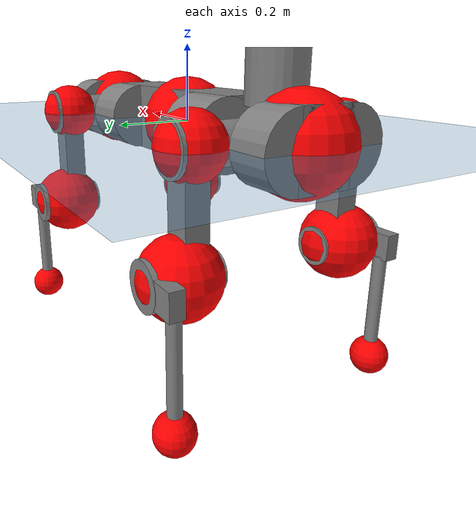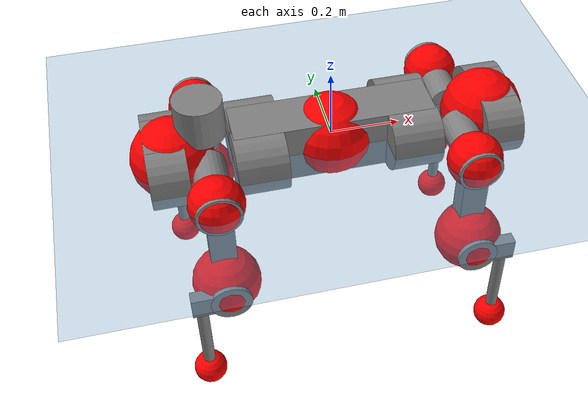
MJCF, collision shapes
<mujoco model="anymal_c">
  <compiler angle="radian" assetdir="assets" balanceinertia="true" inertiafromgeom="false"/>

  <option timestep="0.005" density="1.2" viscosity="2e-05"/>

  <size nkey="1"/>

  <visual>
    <quality shadowsize="8192"/>
    <map shadowclip="0.5"/>
  </visual>

  <default>
    <default class="/">
      <material specular="0" shininess="0.25"/>
      <geom contype="0" conaffinity="0" group="1" solref="-1000 -80"/>
      <site size="0.01 0.005 0.005" group="5"/>
      <general forcelimited="true" forcerange="-80 80" biastype="affine" gainprm="80" biasprm="0 -80 -2"/>
      <default class="anymal_c">
        <joint armature="0.01" damping="0.01" frictionloss="0.1"/>
        <default class="visual">
          <geom type="mesh" group="2"/>
          <default class="visual_zflip"/>
        </default>
        <default class="collision">
          <geom type="cylinder" group="3"/>
          <default class="foot">
            <geom size="0.03 0 0" type="sphere" condim="6" priority="1" friction="0.8 0.02 0.01" solimp="0.015 1 0.03"/>
          </default>
        </default>
      </default>
      <default class="reward_collision_sphere">
        <geom group="5" rgba="1 0 0 1"/>
      </default>
    </default>
  </default>

  <asset>
    <texture type="skybox" colorspace="auto" name="//unnamed_texture_0" builtin="gradient" rgb1="0.95 0.95 0.95" rgb2="0.95 0.95 0.95" width="100" height="600"/>
    <texture type="2d" colorspace="auto" name="texplane" builtin="checker" rgb1="0.345 0.575 0.748" rgb2="0.345 0.575 0.748" markrgb="1 1 1" width="512" height="512"/>
    <texture type="2d" colorspace="linear" name="base" file="base.png"/>
    <texture type="2d" colorspace="linear" name="top_shell" file="top_shell.png"/>
    <texture type="2d" colorspace="linear" name="bottom_shell" file="bottom_shell.png"/>
    <texture type="2d" colorspace="linear" name="remote" file="remote.png"/>
    <texture type="2d" colorspace="linear" name="hatch" file="hatch.png"/>
    <texture type="2d" colorspace="linear" name="handle" file="handle.png"/>
    <texture type="2d" colorspace="linear" name="face" file="face.png"/>
    <texture type="2d" colorspace="linear" name="battery" file="battery.png"/>
    <texture type="2d" colorspace="linear" name="lidar_cage" file="lidar_cage.png"/>
    <texture type="2d" colorspace="linear" name="depth_camera" file="depth_camera.png"/>
    <texture type="2d" colorspace="linear" name="wide_angle_camera" file="wide_angle_camera.png"/>
    <texture type="2d" colorspace="linear" name="lidar" file="lidar.png"/>
    <texture type="2d" colorspace="linear" name="drive" file="drive.png"/>
    <texture type="2d" colorspace="linear" name="hip_l" file="hip_l.png"/>
    <texture type="2d" colorspace="linear" name="shank_l" file="shank_l.png"/>
    <texture type="2d" colorspace="linear" name="foot" file="foot.png"/>
    <texture type="2d" colorspace="linear" name="thigh" file="thigh.png"/>
    <texture type="2d" colorspace="linear" name="shank_r" file="shank_r.png"/>
    <texture type="2d" colorspace="linear" name="hip_r" file="hip_r.png"/>
    <material name="MatPlane" class="/" texture="texplane" texuniform="true" texrepeat="2 2" specular="0.9" shininess="0.5"/>
    <material name="black_plastic" class="/" rgba="0.007 0.007 0.007 1"/>
    <material name="green" class="/" rgba="0.052 0.178 0.033 1"/>
    <material name="red" class="/" rgba="0.178 0.006 0.005 1"/>
    <material name="yellow" class="/" rgba="0.178 0.119 0.006 1"/>
    <material name="lwl" class="/" rgba="0.8 0.8 0.8 1"/>
    <material name="base" class="/" texture="base"/>
    <material name="top_shell" class="/" texture="top_shell"/>
    <material name="bottom_shell" class="/" texture="bottom_shell"/>
    <material name="hip_l" class="/" texture="hip_l"/>
    <material name="thigh" class="/" texture="thigh"/>
    <material name="shank_l" class="/" texture="shank_l"/>
    <material name="foot" class="/" texture="foot"/>
    <material name="hip_r" class="/" texture="hip_r"/>
    <material name="shank" class="/" texture="shank_r"/>
    <material name="hatch" class="/" texture="hatch"/>
    <material name="remote" class="/" texture="remote"/>
    <material name="handle" class="/" texture="handle"/>
    <material name="face" class="/" texture="face"/>
    <material name="depth_camera" class="/" texture="depth_camera"/>
    <material name="wide_angle_camera" class="/" texture="wide_angle_camera"/>
    <material name="battery" class="/" texture="battery"/>
    <material name="lidar_cage" class="/" texture="lidar_cage"/>
    <material name="lidar" class="/" texture="lidar"/>
    <material name="drive" class="/" texture="drive"/>
    <mesh name="base_0" class="/" file="base_0.obj"/>
    <mesh name="base_1" class="/" file="base_1.obj"/>
    <mesh name="base_2" class="/" file="base_2.obj"/>
    <mesh name="base_3" class="/" file="base_3.obj"/>
    <mesh name="base_4" class="/" file="base_4.obj"/>
    <mesh name="base_5" class="/" file="base_5.obj"/>
    <mesh name="top_shell" class="/" file="top_shell.obj"/>
    <mesh name="bottom_shell" class="/" file="bottom_shell.obj"/>
    <mesh name="remote" class="/" file="remote.obj"/>
    <mesh name="handle" class="/" file="handle.obj"/>
    <mesh name="face" class="/" file="face.obj"/>
    <mesh name="wide_angle_camera" class="/" file="wide_angle_camera.obj"/>
    <mesh name="depth_camera" class="/" file="depth_camera.obj"/>
    <mesh name="battery" class="/" file="battery.obj"/>
    <mesh name="lidar_cage" class="/" file="lidar_cage.obj"/>
    <mesh name="lidar" class="/" file="lidar.obj"/>
    <mesh name="drive" class="/" file="drive.obj"/>
    <mesh name="hip_l" class="/" file="hip_l.obj"/>
    <mesh name="thigh" class="/" file="thigh.obj"/>
    <mesh name="shank_l" class="/" file="shank_l.obj"/>
    <mesh name="foot" class="/" file="foot.obj"/>
    <mesh name="hip_r" class="/" file="hip_r.obj"/>
    <mesh name="hatch" class="/" file="hatch.obj"/>
    <mesh name="shank_r" class="/" file="shank_r.obj"/>
  </asset>

  <worldbody>
    <geom name="floor" class="/" size="100 100 0.125" type="plane" group="0" material="MatPlane"/>
    <light name="toplight_shadow" class="/" pos="0 0 5" dir="0.0990148 0.0990148 -0.990148" type="directional" ambient="0.04 0.04 0.04" diffuse="0.55 0.55 0.55" specular="0.12 0.12 0.12"/>
    <light name="toplight_fill" class="/" pos="0 0 5" dir="0.0990148 0.0990148 -0.990148" type="directional" castshadow="false" ambient="0.04 0.04 0.04" diffuse="0.3 0.3 0.3" specular="0.08 0.08 0.08"/>
    <body name="trunk" childclass="anymal_c" pos="-0.00027529 -0.000102634 -0.000286196" quat="1 -7.96893e-05 -0.000352704 -8.55734e-05">
      <inertial pos="0.000983634 -0.000295132 0.0490784" quat="0.501917 0.499735 0.49959 0.498752" mass="18.1999" diaginertia="0.643374 0.514621 0.197272"/>
      <joint name="//unnamed_joint_0" type="free" armature="0" damping="0" frictionloss="0"/>
      <geom name="//unnamed_geom_1" class="visual" material="green" mesh="base_0"/>
      <geom name="//unnamed_geom_2" class="visual" material="yellow" mesh="base_1"/>
      <geom name="//unnamed_geom_3" class="visual" material="red" mesh="base_2"/>
      <geom name="//unnamed_geom_4" class="visual" material="black_plastic" mesh="base_3"/>
      <geom name="//unnamed_geom_5" class="visual" material="lwl" mesh="base_4"/>
      <geom name="//unnamed_geom_6" class="visual" material="base" mesh="base_5"/>
      <geom name="trunk_1" class="collision" size="0.284781 0.0687403 0.0883804" type="box"/>
      <geom name="trunk_2" class="collision" size="0.0883804 0.0711953" pos="0.218007 0.0674281 0" quat="0.707107 0 0.707107 0"/>
      <geom name="trunk_3" class="collision" size="0.0883804 0.0711953" pos="-0.218007 0.0674281 0" quat="0.707107 0 0.707107 0"/>
      <geom name="trunk_4" class="collision" size="0.0883804 0.0711953" pos="0.218007 -0.0674281 0" quat="0.707107 0 0.707107 0"/>
      <geom name="trunk_5" class="collision" size="0.0883804 0.0711953" pos="-0.218007 -0.0674281 0" quat="0.707107 0 0.707107 0"/>
      <geom name="//unnamed_geom_12" class="visual" material="top_shell" mesh="top_shell"/>
      <geom name="//unnamed_geom_13" class="visual" material="bottom_shell" mesh="bottom_shell"/>
      <geom name="//unnamed_geom_14" class="visual" material="remote" mesh="remote"/>
      <geom name="//unnamed_geom_15" class="visual" material="handle" mesh="handle"/>
      <geom name="//unnamed_geom_16" class="visual" pos="0.415467 0 0" quat="1 0 0 0" material="face" mesh="face"/>
      <geom name="trunk_6" class="collision" size="0.0540102 0.0687403 0.0883804" pos="0.470595 0 0" type="box"/>
      <geom name="//unnamed_geom_18" class="collision" size="0.0883804 0.0540102" pos="0.470595 0.0674281 0" quat="0.707107 0 0.707107 0"/>
      <geom name="//unnamed_geom_19" class="collision" size="0.0883804 0.0540102" pos="0.470595 -0.0674281 0" quat="0.707107 0 0.707107 0"/>
      <geom name="//unnamed_geom_20" class="visual" pos="0.462726 0 -0.0284618" quat="0.965926 0 0.258819 0" material="depth_camera" mesh="depth_camera"/>
      <geom name="//unnamed_geom_21" class="visual" pos="0.514197 0 0.0146769" material="wide_angle_camera" mesh="wide_angle_camera"/>
      <geom name="//unnamed_geom_22" class="visual_zflip" pos="-0.415467 0 0" quat="0 0 0 1" material="face" mesh="face"/>
      <geom name="trunk_7" class="collision" size="0.0540102 0.0687403 0.0883804" pos="-0.470595 0 0" quat="0 0 0 1" type="box"/>
      <geom name="//unnamed_geom_24" class="collision" size="0.0883804 0.0540102" pos="-0.470595 -0.0674281 0" quat="0 -0.707107 0 0.707107"/>
      <geom name="//unnamed_geom_25" class="collision" size="0.0883804 0.0540102" pos="-0.470595 0.0674281 0" quat="0 -0.707107 0 0.707107"/>
      <geom name="//unnamed_geom_26" class="visual" pos="-0.462726 0 -0.0284618" quat="0 -0.258819 0 0.965926" material="depth_camera" mesh="depth_camera"/>
      <geom name="//unnamed_geom_27" class="visual_zflip" pos="-0.514197 0 0.0146769" quat="0 0 0 1" material="wide_angle_camera" mesh="wide_angle_camera"/>
      <geom name="//unnamed_geom_28" class="visual" material="battery" mesh="battery"/>
      <geom name="//unnamed_geom_29" class="visual" pos="0 0.0731371 0.0286478" quat="0.683013 -0.183013 0.183013 0.683013" material="depth_camera" mesh="depth_camera"/>
      <geom name="//unnamed_geom_30" class="visual" pos="0 -0.0731371 0.0286478" quat="0.683013 0.183013 0.183013 -0.683013" material="depth_camera" mesh="depth_camera"/>
      <geom name="//unnamed_geom_31" class="visual" pos="-0.364849 0 0.072061" quat="1 0 0 0" material="lidar_cage" mesh="lidar_cage"/>
      <geom name="trunk_8" class="collision" size="0.0687403 0.0589202" pos="-0.364849 0 0.130886"/>
      <geom name="//unnamed_geom_33" class="visual" pos="-0.364849 -1.53512e-05 0.139416" quat="0.707107 0 0 -0.707107" material="lidar" mesh="lidar"/>
      <geom name="//unnamed_geom_34" class="visual" pos="0.300599 0.100185 -2.96063e-10" quat="0.258819 0.965926 0 0" material="drive" mesh="drive"/>
      <geom name="//unnamed_geom_35" class="visual" pos="0.300599 -0.100185 2.96063e-10" quat="0.258819 -0.965926 0 0" material="drive" mesh="drive"/>
      <geom name="//unnamed_geom_36" class="visual" pos="-0.300599 0.100185 2.96063e-10" quat="0 0 0.965926 -0.258819" material="drive" mesh="drive"/>
      <geom name="//unnamed_geom_37" class="visual" pos="-0.300599 -0.100185 -2.96063e-10" quat="0 0 -0.965926 -0.258819" material="drive" mesh="drive"/>
      <geom name="//unnamed_geom_38" class="visual" pos="0.116271 0 0.0715708" quat="1 0 0 0" material="hatch" mesh="hatch"/>
      <geom name="//unnamed_geom_39" class="reward_collision_sphere" size="0.11784"/>
      <geom name="//unnamed_geom_40" class="reward_collision_sphere" size="0.11784" pos="0.45105 0 0"/>
      <geom name="//unnamed_geom_41" class="reward_collision_sphere" size="0.11784" pos="-0.45105 0 0"/>
      <site name="imu" pos="0.252181 0.00797114 0.0426847" size="0.00982004"/>
      <camera name="track" pos="0 -1.92652 0" quat="0.707107 0.707107 0 0" mode="trackcom"/>
      <camera name="ego_camera" pos="0.45105 0 -0.0392169" quat="-0.5 -0.5 0.5 0.5"/>
      <body name="LF_HIP" pos="0.301589 0.101105 0.000753284" quat="0.258692 0.96596 -9.81832e-05 8.96762e-06">
        <inertial pos="0.0569421 -0.0138856 -0.00791574" quat="-0.127636 0.709629 -0.135502 0.67954" mass="2.56185" diaginertia="0.00584455 0.0040257 0.00293467"/>
        <joint name="LF_HAA" pos="0 0 0" axis="1 0.000633973 0.000493262" range="-0.717373 0.477011" armature="0.00968771" damping="0.00579809" frictionloss="0.102143"/>
        <geom name="//unnamed_geom_42" class="visual" pos="0 -1.74161e-05 2.86057e-06" quat="0.258819 -0.965926 0 0" material="hip_l" mesh="hip_l"/>
        <geom name="//unnamed_geom_43" class="visual" pos="0.0600397 -0.0722425 -0.0418362" quat="0.183013 -0.683013 0.683013 0.183013" material="drive" mesh="drive"/>
        <geom name="//unnamed_geom_44" class="collision" size="0.0491002 0.0687403" pos="0.0600397 -0.0115204 -0.00676981" quat="-0.353553 -0.612372 0.612372 -0.353553"/>
        <body name="LF_THIGH" pos="0.0612727 -0.0697117 -0.0419516" quat="0.183109 -0.683068 0.682954 0.182928">
          <inertial pos="0.0307626 5.12026e-05 -0.241753" quat="0.993184 -0.0068422 -0.079625 0.0848483" mass="2.93715" diaginertia="0.0306038 0.0244967 0.00379555"/>
          <joint name="LF_HFE" pos="0 0 0" axis="0.999998 9.39808e-05 0.00201502" stiffness="0.00308188" range="-3.14271 3.12143" armature="0.00965442" damping="0.006494" frictionloss="0.102822"/>
          <geom name="//unnamed_geom_45" class="visual" pos="0.000777422 1.22504e-06 0" quat="0.707107 0 0 -0.707107" material="thigh" mesh="thigh"/>
          <geom name="//unnamed_geom_46" class="collision" size="0.0638303 0.0392802" pos="0.0400933 0 0" quat="0.5 0.5 -0.5 -0.5"/>
          <geom name="//unnamed_geom_47" class="collision" size="0.0368251 0.0294601 0.138771" pos="0.03007 0 -0.138547" quat="0.707107 0 0 -0.707107" type="box"/>
          <geom name="//unnamed_geom_48" class="visual" pos="0.100534 0 -0.27942" quat="1 0 0 0" material="drive" mesh="drive"/>
          <geom name="//unnamed_geom_49" class="collision" size="0.0491002 0.0687403" pos="0.0303707 0 -0.27942" quat="0.707107 0 0.707107 0"/>
          <geom name="//unnamed_geom_50" class="reward_collision_sphere" size="0.0785603" pos="0.0250583 0 0"/>
          <body name="LF_SHANK" pos="0.101131 -0.000230203 -0.279743" quat="1 3.92492e-05 0.000126473 0.000122248">
            <inertial pos="0.00538414 -0.0585067 -0.0783201" quat="0.992874 -0.116403 -0.000754303 -0.0255113" mass="0.554083" diaginertia="0.0102348 0.00761157 0.0010136"/>
            <joint name="LF_KFE" pos="0 0 0" axis="0.999999 -0.000379194 0.00144549" range="-3.15739 3.14334" armature="0.00973547" damping="0.00950072" frictionloss="0.0991229"/>
            <geom name="//unnamed_geom_51" class="visual" pos="0.0002535 0.00135168 0" quat="0.707107 0 0 -0.707107" material="shank_l" mesh="shank_l"/>
            <geom name="LF_kfe_act" class="collision" size="0.0589202 0.0196401" pos="0.0200466 0 0" quat="0.5 0.5 -0.5 -0.5"/>
            <geom name="//unnamed_geom_53" class="collision" size="0.0564642 0.0331426 0.0186581" pos="0.0200466 -0.0553864 0" quat="0.5 0.5 -0.5 -0.5" type="box"/>
            <geom name="//unnamed_geom_54" class="visual" pos="0.0130804 -0.084283 -0.331353" quat="0.382683 0 0 -0.92388" material="foot" mesh="foot"/>
            <geom name="LF_calf" class="collision" size="0.0171851 0.13871" pos="0.0130804 -0.0847186 -0.165676" quat="0.707107 0 0 -0.707107"/>
            <geom name="LF_foot" class="foot" size="0.0300453" pos="0.0130804 -0.0847186 -0.309293" quat="0.707107 0 0 -0.707107"/>
            <geom name="//unnamed_geom_57" class="reward_collision_sphere" size="0.0982004" pos="-0.0501166 0 0"/>
            <geom name="//unnamed_geom_58" class="reward_collision_sphere" size="0.0491002" pos="0.0130804 -0.0847186 -0.309293"/>
            <site name="LF_foot" class="foot" pos="0.0130804 -0.0847186 -0.309293" quat="0.707107 0 0 -0.707107" size="0.00982004"/>
          </body>
        </body>
      </body>
      <body name="RF_HIP" pos="0.300597 -0.100595 0.000249225" quat="0.258813 -0.965927 9.67209e-06 5.41206e-07">
        <inertial pos="0.0578124 0.0138714 -0.00739355" quat="0.137621 0.681134 0.124561 0.708238" mass="2.6555" diaginertia="0.00598737 0.00412989 0.00301807"/>
        <joint name="RF_HAA" pos="0 0 0" axis="0.999994 0.00329892 -0.00100978" range="-0.484358 0.723691" armature="0.00993282" damping="0.0108232" frictionloss="0.0962293"/>
        <geom name="//unnamed_geom_59" class="visual" pos="0 1.74159e-05 2.86057e-06" quat="0.258819 0.965926 0 0" material="hip_r" mesh="hip_r"/>
        <geom name="//unnamed_geom_60" class="visual" pos="0.0600397 0.0722425 -0.0418362" quat="0.183013 0.683013 0.683013 -0.183013" material="drive" mesh="drive"/>
        <geom name="//unnamed_geom_61" class="collision" size="0.0491002 0.0687403" pos="0.0600397 0.0115204 -0.00676981" quat="-0.353553 0.612372 0.612372 0.353553"/>
        <body name="RF_THIGH" pos="0.0594382 0.0704716 -0.0416458" quat="0.183132 0.683036 0.682936 -0.183092">
          <inertial pos="0.0316097 1.31227e-05 -0.239713" quat="0.992892 -0.00203351 -0.082494 0.0857638" mass="2.87545" diaginertia="0.0307443 0.0246726 0.00379383"/>
          <joint name="RF_HFE" pos="0 0 0" axis="1 9.07539e-06 -3.30549e-05" stiffness="0.00882668" range="-3.14677 3.12941" armature="0.0102125" damping="0.0105821" frictionloss="0.0950616"/>
          <geom name="//unnamed_geom_62" class="visual" pos="0.000777422 1.22504e-06 0" quat="0.707107 0 0 -0.707107" material="thigh" mesh="thigh"/>
          <geom name="//unnamed_geom_63" class="collision" size="0.0638303 0.0392802" pos="0.0400933 0 0" quat="0.5 0.5 0.5 0.5"/>
          <geom name="//unnamed_geom_64" class="collision" size="0.0368251 0.0294601 0.138771" pos="0.03007 0 -0.138547" quat="0.707107 0 0 0.707107" type="box"/>
          <geom name="//unnamed_geom_65" class="visual" pos="0.100534 0 -0.27942" quat="1 0 0 0" material="drive" mesh="drive"/>
          <geom name="//unnamed_geom_66" class="collision" size="0.0491002 0.0687403" pos="0.0303707 0 -0.27942" quat="0.707107 0 0.707107 0"/>
          <geom name="//unnamed_geom_67" class="reward_collision_sphere" size="0.0785603" pos="0.0250583 0 0"/>
          <body name="RF_SHANK" pos="0.101268 0.000206821 -0.279582" quat="1 -0.000232444 -3.28415e-05 -0.000347344">
            <inertial pos="0.00620021 0.0590374 -0.0788444" quat="0.993143 0.113894 0.00307764 0.0261782" mass="0.548062" diaginertia="0.0101545 0.0076976 0.00100829"/>
            <joint name="RF_KFE" pos="0 0 0" axis="0.99999 -0.00224342 0.00396683" range="-3.1448 3.15502" armature="0.0096625" damping="0.0110114" frictionloss="0.0944707"/>
            <geom name="//unnamed_geom_68" class="visual" pos="0.000253499 -0.00135167 0" quat="0.707107 0 0 0.707107" material="shank" mesh="shank_r"/>
            <geom name="RF_kfe_act" class="collision" size="0.0589202 0.0196401" pos="0.0200466 0 0" quat="0.5 0.5 0.5 0.5"/>
            <geom name="//unnamed_geom_70" class="collision" size="0.0564642 0.0331426 0.0186581" pos="0.0200466 0.0553864 0" quat="0.5 0.5 0.5 0.5" type="box"/>
            <geom name="//unnamed_geom_71" class="visual" pos="0.0130805 0.084283 -0.331353" quat="0.382683 0 0 0.92388" material="foot" mesh="foot"/>
            <geom name="RF_calf" class="collision" size="0.0171851 0.13871" pos="0.0130804 0.0847186 -0.165676" quat="0.707107 0 0 0.707107"/>
            <geom name="RF_foot" class="foot" size="0.028897" pos="0.0130804 0.0847186 -0.309293" quat="0.707107 0 0 0.707107"/>
            <geom name="//unnamed_geom_74" class="reward_collision_sphere" size="0.0982004" pos="-0.0501166 0 0"/>
            <geom name="//unnamed_geom_75" class="reward_collision_sphere" size="0.0491002" pos="0.0130804 0.0847186 -0.309293"/>
            <site name="RF_foot" class="foot" pos="0.0130804 0.0847186 -0.309293" quat="0.707107 0 0 0.707107" size="0.00982004"/>
          </body>
        </body>
      </body>
      <body name="LH_HIP" pos="-0.299666 0.101079 0.000160778" quat="0.000139155 0.000114201 0.965877 -0.259001">
        <inertial pos="0.0570244 0.0137378 -0.00902568" quat="0.134461 0.678381 0.129051 0.710679" mass="2.65387" diaginertia="0.00608253 0.00409298 0.0030415"/>
        <joint name="LH_HAA" pos="0 0 0" axis="1 -0.000626621 -0.000154348" stiffness="0.00158484" range="-0.496194 0.714032" armature="0.0097755" damping="0.00439721" frictionloss="0.0979045"/>
        <geom name="//unnamed_geom_76" class="visual" pos="0 1.74159e-05 2.86057e-06" quat="-0.258819 -0.965926 0 0" material="hip_r" mesh="hip_r"/>
        <geom name="//unnamed_geom_77" class="visual" pos="0.0600397 0.0722425 -0.0418362" quat="0.183013 0.683013 0.683013 -0.183013" material="drive" mesh="drive"/>
        <geom name="//unnamed_geom_78" class="collision" size="0.0491002 0.0687403" pos="0.0600397 0.0115204 -0.00676981" quat="-0.353553 0.612372 0.612372 0.353553"/>
        <body name="LH_THIGH" pos="0.0592842 0.0708473 -0.0417557" quat="0.18278 0.683031 0.683059 -0.183005">
          <inertial pos="0.0296947 -0.000231604 -0.241476" quat="0.992856 -0.00550034 -0.0796945 0.0886344" mass="2.95439" diaginertia="0.0304464 0.0247795 0.00380342"/>
          <joint name="LH_HFE" pos="0 0 0" axis="1 0.000473971 0.000770948" range="-3.12371 3.15602" armature="0.0100682" damping="0.0111293" frictionloss="0.0977614"/>
          <geom name="//unnamed_geom_79" class="visual" pos="0.000777422 1.22504e-06 0" quat="0.707107 0 0 -0.707107" material="thigh" mesh="thigh"/>
          <geom name="//unnamed_geom_80" class="collision" size="0.0638303 0.0392802" pos="0.0400933 0 0" quat="0.5 0.5 -0.5 -0.5"/>
          <geom name="//unnamed_geom_81" class="collision" size="0.0368251 0.0294601 0.138771" pos="0.03007 0 -0.138547" quat="0.707107 0 0 -0.707107" type="box"/>
          <geom name="//unnamed_geom_82" class="visual" pos="0.100534 0 -0.27942" quat="1 0 0 0" material="drive" mesh="drive"/>
          <geom name="//unnamed_geom_83" class="collision" size="0.0491002 0.0687403" pos="0.0303707 0 -0.27942" quat="0.707107 0 0.707107 0"/>
          <geom name="//unnamed_geom_84" class="reward_collision_sphere" size="0.0785603" pos="0.0250583 0 0"/>
          <body name="LH_SHANK" pos="0.100884 -0.000682165 -0.279199" quat="1 1.45177e-06 3.90656e-05 0.000105849">
            <inertial pos="0.00460028 0.0590568 -0.0788987" quat="0.992967 0.114605 -0.00151337 0.0296593" mass="0.565677" diaginertia="0.0105562 0.00779555 0.00103036"/>
            <joint name="LH_KFE" pos="0 0 0" axis="0.999996 0.00136538 0.0025352" range="-3.14545 3.15541" armature="0.0101105" damping="0.00957954" frictionloss="0.0990145"/>
            <geom name="//unnamed_geom_85" class="visual" pos="0.000253499 -0.00135167 0" quat="-0.707107 0 0 -0.707107" material="shank" mesh="shank_r"/>
            <geom name="LH_kfe_act" class="collision" size="0.0589202 0.0196401" pos="0.0200466 0 0" quat="0.5 0.5 -0.5 -0.5"/>
            <geom name="//unnamed_geom_87" class="collision" size="0.0564642 0.0331426 0.0186581" pos="0.0200466 0.0553864 0" quat="0.5 0.5 -0.5 -0.5" type="box"/>
            <geom name="//unnamed_geom_88" class="visual" pos="0.0130805 0.084283 -0.331353" quat="-0.382683 0 0 -0.92388" material="foot" mesh="foot"/>
            <geom name="LH_calf" class="collision" size="0.0171851 0.13871" pos="0.0130804 0.0847186 -0.165676" quat="0.707107 0 0 -0.707107"/>
            <geom name="LH_foot" class="foot" size="0.0294582" pos="0.0130804 0.0847186 -0.309293" quat="0.707107 0 0 -0.707107"/>
            <geom name="//unnamed_geom_91" class="reward_collision_sphere" size="0.0982004" pos="-0.0501166 0 0"/>
            <geom name="//unnamed_geom_92" class="reward_collision_sphere" size="0.0491002" pos="0.0130804 0.0847186 -0.309293"/>
            <site name="LH_foot" class="foot" pos="0.0130804 0.0847186 -0.309293" quat="0.707107 0 0 -0.707107" size="0.00982004"/>
          </body>
        </body>
      </body>
      <body name="RH_HIP" pos="-0.29929 -0.0998958 -0.000502722" quat="-8.17724e-06 1.7983e-05 -0.965933 -0.258794">
        <inertial pos="0.0577196 -0.0157259 -0.00920456" quat="-0.12881 0.710629 -0.128418 0.679649" mass="2.58945" diaginertia="0.00583758 0.00402924 0.00293325"/>
        <joint name="RH_HAA" pos="0 0 0" axis="0.999993 0.00185397 -0.00335598" range="-0.730326 0.473593" armature="0.0101184" damping="0.0145709" frictionloss="0.0979487"/>
        <geom name="//unnamed_geom_93" class="visual" pos="0 -1.74161e-05 2.86057e-06" quat="-0.258819 0.965926 0 0" material="hip_l" mesh="hip_l"/>
        <geom name="//unnamed_geom_94" class="visual" pos="0.0600397 -0.0722425 -0.0418362" quat="-0.183013 0.683013 -0.683013 -0.183013" material="drive" mesh="drive"/>
        <geom name="//unnamed_geom_95" class="collision" size="0.0491002 0.0687403" pos="0.0600397 -0.0115204 -0.00676981" quat="0.353553 0.612372 -0.612372 0.353553"/>
        <body name="RH_THIGH" pos="0.0608184 -0.0706622 -0.0419998" quat="-0.183023 0.682949 -0.683089 -0.182955">
          <inertial pos="0.0308328 -0.000933507 -0.240351" quat="0.993173 -0.00532135 -0.0804321 0.0843154" mass="2.95916" diaginertia="0.0311354 0.0251103 0.00381839"/>
          <joint name="RH_HFE" pos="0 0 0" axis="0.999997 -0.000732955 0.00233223" range="-3.15832 3.14005" armature="0.00956721" damping="0.00356913" frictionloss="0.0985463"/>
          <geom name="//unnamed_geom_96" class="visual" pos="0.000777422 1.22504e-06 0" quat="0.707107 0 0 -0.707107" material="thigh" mesh="thigh"/>
          <geom name="//unnamed_geom_97" class="collision" size="0.0638303 0.0392802" pos="0.0400933 0 0" quat="0.5 0.5 0.5 0.5"/>
          <geom name="//unnamed_geom_98" class="collision" size="0.0368251 0.0294601 0.138771" pos="0.03007 0 -0.138547" quat="0.707107 0 0 0.707107" type="box"/>
          <geom name="//unnamed_geom_99" class="visual" pos="0.100534 0 -0.27942" quat="1 0 0 0" material="drive" mesh="drive"/>
          <geom name="//unnamed_geom_100" class="collision" size="0.0491002 0.0687403" pos="0.0303707 0 -0.27942" quat="0.707107 0 0.707107 0"/>
          <geom name="//unnamed_geom_101" class="reward_collision_sphere" size="0.0785603" pos="0.0250583 0 0"/>
          <body name="RH_SHANK" pos="0.100586 0.000418832 -0.279772" quat="1 -0.000124719 -0.00015633 -3.68854e-05">
            <inertial pos="0.00535488 -0.0582148 -0.0789207" quat="0.993079 -0.114302 -0.000506653 -0.0270015" mass="0.558912" diaginertia="0.0103909 0.00765804 0.00102374"/>
            <joint name="RH_KFE" pos="0 0 0" axis="0.999996 -0.0027278 -0.000310947" range="-3.13047 3.14182" armature="0.00989832" damping="0.0110392" frictionloss="0.0945952"/>
            <geom name="//unnamed_geom_102" class="visual" pos="0.0002535 0.00135168 0" quat="0.707107 0 0 -0.707107" material="shank_l" mesh="shank_l"/>
            <geom name="RH_kfe_act" class="collision" size="0.0589202 0.0196401" pos="0.0200466 0 0" quat="0.5 0.5 0.5 0.5"/>
            <geom name="//unnamed_geom_104" class="collision" size="0.0564642 0.0331426 0.0186581" pos="0.0200466 -0.0553864 0" quat="0.5 0.5 0.5 0.5" type="box"/>
            <geom name="//unnamed_geom_105" class="visual" pos="0.0130804 -0.084283 -0.331353" quat="0.382683 0 0 -0.92388" material="foot" mesh="foot"/>
            <geom name="RH_calf" class="collision" size="0.0171851 0.13871" pos="0.0130804 -0.0847186 -0.165676" quat="0.707107 0 0 0.707107"/>
            <geom name="RH_foot" class="foot" size="0.0287473" pos="0.0130804 -0.0847186 -0.309293" quat="0.707107 0 0 0.707107"/>
            <geom name="//unnamed_geom_108" class="reward_collision_sphere" size="0.0982004" pos="-0.0501166 0 0"/>
            <geom name="//unnamed_geom_109" class="reward_collision_sphere" size="0.0491002" pos="0.0130804 -0.0847186 -0.309293"/>
            <site name="RH_foot" class="foot" pos="0.0130804 -0.0847186 -0.309293" quat="0.707107 0 0 0.707107" size="0.00982004"/>
          </body>
        </body>
      </body>
    </body>
  </worldbody>

  <contact>
    <pair class="/" geom1="floor" geom2="LF_foot" name="//unnamed_contact_0"/>
    <pair class="/" geom1="floor" geom2="RF_foot" name="//unnamed_contact_1"/>
    <pair class="/" geom1="floor" geom2="LH_foot" name="//unnamed_contact_2"/>
    <pair class="/" geom1="floor" geom2="RH_foot" name="//unnamed_contact_3"/>
  </contact>

  <actuator>
    <general name="LF_HAA" class="/" joint="LF_HAA" forcerange="-80.8456 80.8456" gainprm="81.0958" biasprm="0 -81.0958 -1.93616"/>
    <general name="LF_HFE" class="/" joint="LF_HFE" forcerange="-76.6021 76.6021" gainprm="81.0958" biasprm="0 -81.0958 -1.93616"/>
    <general name="LF_KFE" class="/" joint="LF_KFE" forcerange="-78.9541 78.9541" gainprm="81.0958" biasprm="0 -81.0958 -1.93616"/>
    <general name="RF_HAA" class="/" joint="RF_HAA" forcerange="-78.1865 78.1865" gainprm="81.0958" biasprm="0 -81.0958 -1.93616"/>
    <general name="RF_HFE" class="/" joint="RF_HFE" forcerange="-78.4153 78.4153" gainprm="81.0958" biasprm="0 -81.0958 -1.93616"/>
    <general name="RF_KFE" class="/" joint="RF_KFE" forcerange="-77.3006 77.3006" gainprm="81.0958" biasprm="0 -81.0958 -1.93616"/>
    <general name="LH_HAA" class="/" joint="LH_HAA" forcerange="-79.2706 79.2706" gainprm="81.0958" biasprm="0 -81.0958 -1.93616"/>
    <general name="LH_HFE" class="/" joint="LH_HFE" forcerange="-81.0624 81.0624" gainprm="81.0958" biasprm="0 -81.0958 -1.93616"/>
    <general name="LH_KFE" class="/" joint="LH_KFE" forcerange="-77.3392 77.3392" gainprm="81.0958" biasprm="0 -81.0958 -1.93616"/>
    <general name="RH_HAA" class="/" joint="RH_HAA" forcerange="-79.1564 79.1564" gainprm="81.0958" biasprm="0 -81.0958 -1.93616"/>
    <general name="RH_HFE" class="/" joint="RH_HFE" forcerange="-79.328 79.328" gainprm="81.0958" biasprm="0 -81.0958 -1.93616"/>
    <general name="RH_KFE" class="/" joint="RH_KFE" forcerange="-80.1076 80.1076" gainprm="81.0958" biasprm="0 -81.0958 -1.93616"/>
  </actuator>

  <sensor>
    <gyro site="imu" name="imu_angular_velocity"/>
    <velocimeter site="imu" name="imu_linear_velocity"/>
    <framelinvel objtype="site" objname="LF_foot" name="LF_foot_global_linear_velocity"/>
    <framelinvel objtype="site" objname="RF_foot" name="RF_foot_global_linear_velocity"/>
    <framelinvel objtype="site" objname="LH_foot" name="LH_foot_global_linear_velocity"/>
    <framelinvel objtype="site" objname="RH_foot" name="RH_foot_global_linear_velocity"/>
  </sensor>

  <keyframe>
    <key name="home" qpos="0 0 0.55 1 0 0 0 0 0.4 -0.8 0 -0.4 0.8 0 -0.4 0.8 0 0.4 -0.8"/>
  </keyframe>
</mujoco>
